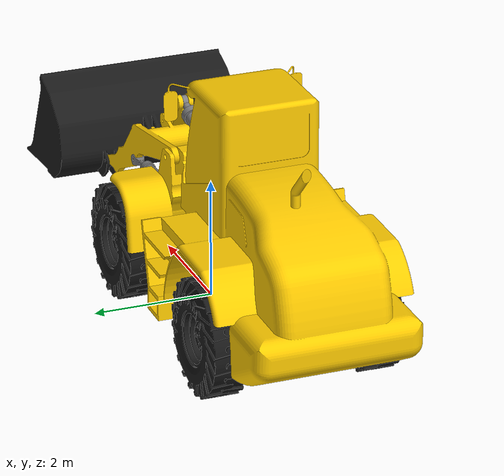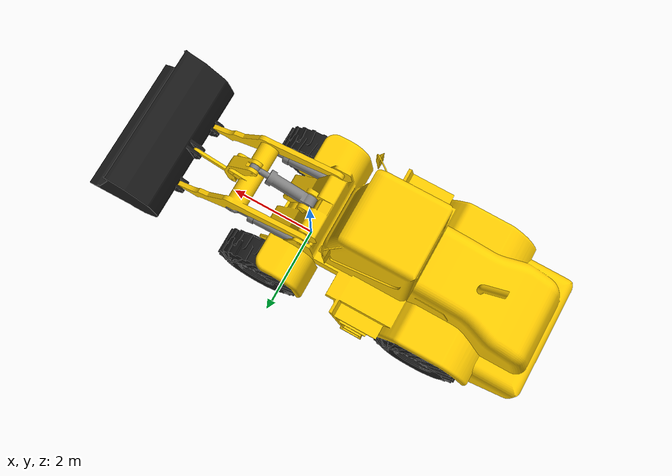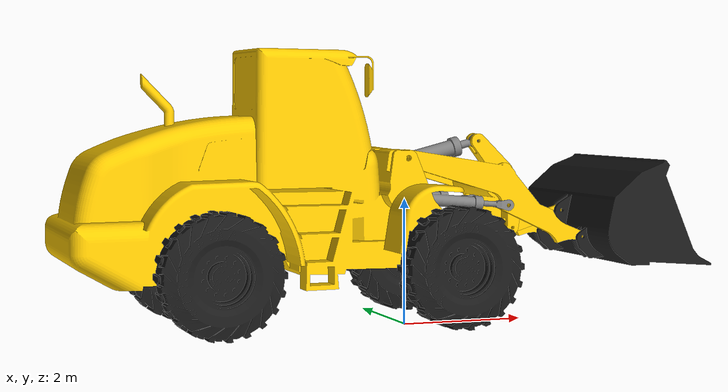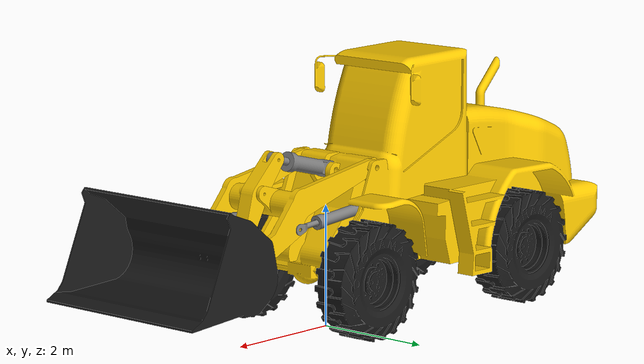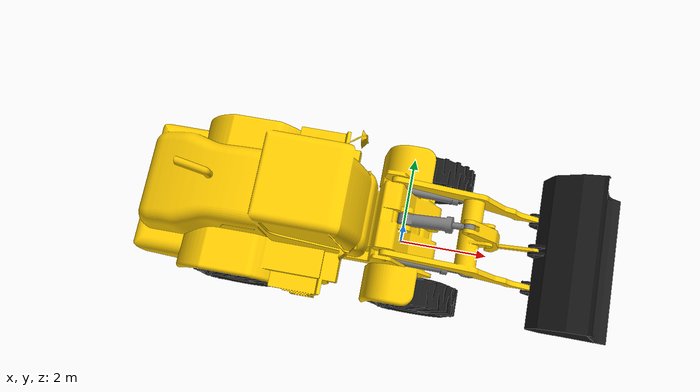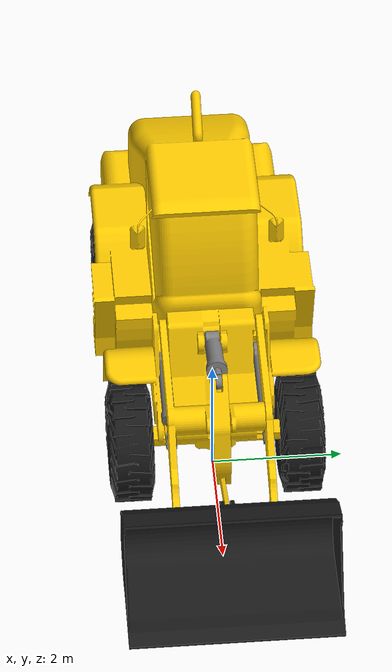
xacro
<?xml version="1.0"?>
<robot xmlns:xacro="http://www.ros.org/wiki/xacro" name="L580">

  <material name="yellow"><color rgba="1.0 0.8 0.0 1.0"/></material>
  <material name="grey"><color rgba="0.5 0.5 0.5 1.0"/></material>
  <material name="black"><color rgba="0.1 0.1 0.1 1.0"/></material>

  <link name="dummy_link"/>

  <joint name="dummy_to_base" type="fixed">
    <parent link="dummy_link"/>
    <child link="base_link"/>
    <origin xyz="0 0 2.6" rpy="0 0 0"/>
  </joint>

  <link name="base_link">
    <inertial>
      <mass value="5000.0"/>
      <origin xyz="-2.61002 0.0 -0.48814" rpy="0 0 0"/>
      <inertia ixx="5000.0" ixy="0.0" ixz="500.0" iyy="15000.0" iyz="0.0" izz="13000.0"/>
    </inertial>
    <visual><geometry><mesh filename="file:///$(find loader_sim_pkg)/meshes/body.STL"/></geometry><material name="yellow"/></visual>
    <collision><geometry><mesh filename="file:///$(find loader_sim_pkg)/meshes/body.STL"/></geometry></collision>
  </link>

  <joint name="front_wheel_joint" type="continuous">
    <parent link="base_link"/>
    <child link="front_wheel_link"/>
    <origin xyz="0.43775 0 -1.5816" rpy="-1.57 -1.57 0"/>
    <axis xyz="0 0 1"/>
  </joint>
  <link name="front_wheel_link">
    <inertial>
      <mass value="500.0"/>
      <origin xyz="0 0 0" rpy="0 0 0"/>
      <inertia ixx="100.0" ixy="0.0" ixz="0.0" iyy="100.0" iyz="0.0" izz="50.0"/>
    </inertial>
    <visual><geometry><mesh filename="file:///$(find loader_sim_pkg)/meshes/wheel.STL"/></geometry><material name="black"/></visual>
    <collision><geometry><mesh filename="file:///$(find loader_sim_pkg)/meshes/wheel.STL"/></geometry></collision>
  </link>

  <joint name="rear_wheel_joint" type="continuous">
    <parent link="base_link"/>
    <child link="rear_wheel_link"/>
    <origin xyz="-3.33631 0 -1.5816" rpy="-1.57 -1.57 0"/>
    <axis xyz="0 0 1"/>
  </joint>
  <link name="rear_wheel_link">
    <inertial>
      <mass value="500.0"/>
      <origin xyz="0 0 0" rpy="0 0 0"/>
      <inertia ixx="100.0" ixy="0.0" ixz="0.0" iyy="100.0" iyz="0.0" izz="50.0"/>
    </inertial>
    <visual><geometry><mesh filename="file:///$(find loader_sim_pkg)/meshes/wheel.STL"/></geometry><material name="black"/></visual>
    <collision><geometry><mesh filename="file:///$(find loader_sim_pkg)/meshes/wheel.STL"/></geometry></collision>
  </link>

  <joint name="arm_joint2" type="revolute">
    <parent link="base_link"/>
    <child link="arm_link1"/>
    <origin xyz="-0.25834 0 0.08169" rpy="-1.57 0.40815617 0"/>
    <axis xyz="0 0 1"/>
    <limit lower="-1.5" upper="1.5" effort="50000" velocity="0.5"/>
    <dynamics damping="500.0" friction="50.0"/>
  </joint>
  <link name="arm_link1">
    <inertial>
      <mass value="100.0"/>
      <origin xyz="1.28313 0.0 0.0" rpy="0 0 0"/>
      <inertia ixx="10.0" ixy="0.0" ixz="0" iyy="25.0" iyz="0.0" izz="28.0"/>
    </inertial>
    <visual><geometry><mesh filename="file:///$(find loader_sim_pkg)/meshes/arm_link1.STL"/></geometry><material name="yellow"/></visual>
    <collision><geometry><mesh filename="file:///$(find loader_sim_pkg)/meshes/arm_link1.STL"/></geometry></collision>
  </link>

  <joint name="arm_joint4" type="revolute">
    <parent link="arm_link1"/>
    <child link="bucket"/>
    <origin xyz="3.26512 0 0" rpy="0 0 -0.329692696"/>
    <axis xyz="0 0 1"/>
    <limit lower="-2.0" upper="2.0" effort="30000" velocity="0.5"/>
    <dynamics damping="200.0" friction="20.0"/>
  </joint>
  <link name="bucket">
    <inertial>
      <mass value="10.0"/>
      <origin xyz="0.81076 -0.35 0.0" rpy="0 0 0"/>
      <inertia ixx="5.0" ixy="0.0" ixz="0.0" iyy="5.0" iyz="0.0" izz="2.0"/>
    </inertial>
    <visual><geometry><mesh filename="file:///$(find loader_sim_pkg)/meshes/bucket.STL"/></geometry><material name="black"/></visual>
    <collision><geometry><mesh filename="file:///$(find loader_sim_pkg)/meshes/bucket.STL"/></geometry></collision>
  </link>

  <joint name="bellcrank_joint" type="revolute">
    <parent link="arm_link1"/>
    <child link="tilt_link1"/>
    <origin xyz="1.85125 -0.53443 0" rpy="0 0 0.436681379"/>
    <axis xyz="0 0 1"/>
    <limit lower="-3.0" upper="3.0" effort="20000" velocity="1.0"/>
    <dynamics damping="300.0" friction="30.0"/>
  </joint>
  <link name="tilt_link1">
    <inertial>
      <mass value="30.0"/>
      <origin xyz="0.10893 0.0 0.0" rpy="0 0 0"/>
      <inertia ixx="1.0" ixy="0.0" ixz="0.0" iyy="5.0" iyz="0.0" izz="5.5"/>
    </inertial>
    <visual><geometry><mesh filename="file:///$(find loader_sim_pkg)/meshes/tilt_link1_co2.STL"/></geometry><material name="yellow"/></visual>
    <collision><geometry><mesh filename="file:///$(find loader_sim_pkg)/meshes/tilt_link1_co2.STL"/></geometry></collision>
  </link>

  <joint name="tilt_joint3" type="revolute">
    <parent link="tilt_link1"/>
    <child link="tilt_link2"/>
    <origin xyz="0.82217 0.48340 0" rpy="0 0 -1.13446401"/>
    <axis xyz="0 0 1"/>
    <limit lower="-3.0" upper="3.0" effort="10000" velocity="1.0"/>
    <dynamics damping="100.0" friction="10.0"/>
  </joint>
  <link name="tilt_link2">
    <inertial>
      <mass value="5.0"/>
      <origin xyz="0.45346 0.0 0.0" rpy="0 0 0"/>
      <inertia ixx="0.05" ixy="0.0" ixz="0.0" iyy="1.0" iyz="0.0" izz="1.0"/>
    </inertial>
    <visual><geometry><mesh filename="file:///$(find loader_sim_pkg)/meshes/tilt_link2.STL"/></geometry><material name="yellow"/></visual>
    <collision><geometry><mesh filename="file:///$(find loader_sim_pkg)/meshes/tilt_link2.STL"/></geometry></collision>
  </link>

  <joint name="arm_joint1" type="revolute">
    <parent link="base_link"/>
    <child link="cil_link2"/>
    <origin xyz="-0.30062 0 -0.53381" rpy="-1.57 0.08666653 0"/>
    <axis xyz="0 0 1"/>
    <limit lower="-1.0" upper="1.0" effort="10000" velocity="1.0"/>
    <dynamics damping="50.0" friction="5.0"/>
  </joint>
  <link name="cil_link2">
    <inertial>
      <mass value="15.0"/>
      <origin xyz="0.42516 0 0" rpy="0 0 0"/>
      <inertia ixx="0.2" ixy="0.0" ixz="0.0" iyy="2.0" iyz="0.0" izz="2.0"/>
    </inertial>
    <visual><geometry><mesh filename="file:///$(find loader_sim_pkg)/meshes/cil2.STL"/></geometry><material name="grey"/></visual>
    <collision><geometry><mesh filename="file:///$(find loader_sim_pkg)/meshes/cil2.STL"/></geometry></collision>
  </link>

  <joint name="cil2_joint" type="prismatic">
    <parent link="cil_link2"/>
    <child link="cil_pris_link2"/>
    <origin xyz="0.42917 0 0" rpy="3.14 -1.57 0"/>
    <axis xyz="0 0 1"/>
    <limit lower="0.0" upper="1.0" effort="100000" velocity="0.2"/>
    <dynamics damping="1000.0" friction="100.0"/>
  </joint>
  <link name="cil_pris_link2">
    <inertial>
      <mass value="5.0"/>
      <origin xyz="0 0 0.49872" rpy="0 0 0"/>
      <inertia ixx="0.5" ixy="0.0" ixz="0.0" iyy="0.5" iyz="0.0" izz="0.05"/>
    </inertial>
    <visual><geometry><mesh filename="file:///$(find loader_sim_pkg)/meshes/cil2_pris.STL"/></geometry><material name="grey"/></visual>
    <collision><geometry><mesh filename="file:///$(find loader_sim_pkg)/meshes/cil2_pris.STL"/></geometry></collision>
  </link>

  <joint name="tilt_joint1" type="revolute">
    <parent link="base_link"/>
    <child link="cil_link1"/>
    <origin xyz="0 0 0" rpy="-1.57 -0.24965842 0"/>
    <axis xyz="0 0 1"/>
    <limit lower="-1.0" upper="1.0" effort="10000" velocity="1.0"/>
    <dynamics damping="50.0" friction="5.0"/>
  </joint>
  <link name="cil_link1">
    <inertial>
      <mass value="15.0"/>
      <origin xyz="0.42516 0 0" rpy="0 0 0"/>
      <inertia ixx="0.2" ixy="0.0" ixz="0.0" iyy="2.0" iyz="0.0" izz="2.0"/>
    </inertial>
    <visual><geometry><mesh filename="file:///$(find loader_sim_pkg)/meshes/cil1.STL"/></geometry><material name="grey"/></visual>
    <collision><geometry><mesh filename="file:///$(find loader_sim_pkg)/meshes/cil1.STL"/></geometry></collision>
  </link>

  <joint name="cil1_joint" type="prismatic">
    <parent link="cil_link1"/>
    <child link="cil_pris_link1"/>
    <origin xyz="0.37347 0 0" rpy="3.14 -1.57 0"/>
    <axis xyz="0 0 1"/>
    <limit lower="0.0" upper="0.7" effort="100000" velocity="0.2"/>
    <dynamics damping="1000.0" friction="100.0"/>
  </joint>
  <link name="cil_pris_link1">
    <inertial>
      <mass value="5.0"/>
      <origin xyz="0 0 0.49872" rpy="0 0 0"/>
      <inertia ixx="0.5" ixy="0.0" ixz="0.0" iyy="0.5" iyz="0.0" izz="0.05"/>
    </inertial>
    <visual><geometry><mesh filename="file:///$(find loader_sim_pkg)/meshes/cil1_pris.STL"/></geometry><material name="grey"/></visual>
    <collision><geometry><mesh filename="file:///$(find loader_sim_pkg)/meshes/cil1_pris.STL"/></geometry></collision>
  </link>

  <gazebo>
    <joint name="lift_loop_joint" type="revolute">
      <parent>cil_pris_link2</parent>
      <child>arm_link1</child>
      <pose>0 0 1.33635 3.14 -1.57 0</pose>
      <axis>
        <xyz>0 0 1</xyz>
        <limit>
          <lower>-6.28</lower>
          <upper>6.28</upper>
        </limit>
        <dynamics>
          <damping>100.0</damping>
          <friction>10.0</friction>
        </dynamics>
      </axis>
      <physics>
        <ode>
          <implicit_spring_damper>true</implicit_spring_damper>
          <cfm>0.001</cfm>
          <erp>0.2</erp>
        </ode>
      </physics>
    </joint>

    <joint name="tilt_piston_loop" type="revolute">
      <parent>cil_pris_link1</parent>
      <child>tilt_link1</child>
      <pose>0.89626 0 0 3.14 -1.57 0</pose>
      <axis>
        <xyz>0 0 1</xyz>
        <limit>
          <lower>-6.28</lower>
          <upper>6.28</upper>
        </limit>
        <dynamics>
          <damping>100.0</damping>
          <friction>10.0</friction>
        </dynamics>
      </axis>
      <physics>
        <ode>
          <implicit_spring_damper>true</implicit_spring_damper>
          <cfm>0.001</cfm>
          <erp>0.2</erp>
        </ode>
      </physics>
    </joint>

    <joint name="dogbone_bucket_loop" type="revolute">
      <parent>tilt_link2</parent>
      <child>bucket</child>
      <pose>0.92750 0 0 0 0 0.368089939</pose>
      <axis>
        <xyz>0 0 1</xyz>
        <limit>
          <lower>-6.28</lower>
          <upper>6.28</upper>
        </limit>
        <dynamics>
          <damping>50.0</damping>
          <friction>5.0</friction>
        </dynamics>
      </axis>
      <physics>
        <ode>
          <implicit_spring_damper>true</implicit_spring_damper>
          <cfm>0.001</cfm>
          <erp>0.2</erp>
        </ode>
      </physics>
    </joint>

    <physics type="ode">
      <max_step_size>0.001</max_step_size>
      <real_time_factor>1.0</real_time_factor>
      <real_time_update_rate>1000</real_time_update_rate>
      <ode>
        <solver>
          <type>quick</type>
          <iters>150</iters>
          <sor>1.3</sor>
        </solver>
        <constraints>
          <cfm>0.0</cfm>
          <erp>0.2</erp>
          <contact_max_correcting_vel>100.0</contact_max_correcting_vel>
          <contact_surface_layer>0.001</contact_surface_layer>
        </constraints>
      </ode>
    </physics>
  </gazebo>

  <ros2_control name="GazeboSystem" type="system">
    <hardware>
        <plugin>gazebo_ros2_control/GazeboSystem</plugin>
    </hardware>

    <joint name="front_wheel_joint">
        <command_interface name="velocity"/>
        <state_interface name="position">
            <param name="initial_value">0.0</param>
        </state_interface>
        <state_interface name="velocity"/>
    </joint>
    <joint name="rear_wheel_joint">
        <command_interface name="velocity"/>
        <state_interface name="position">
            <param name="initial_value">0.0</param>
        </state_interface>
        <state_interface name="velocity"/>
    </joint>

    <joint name="cil1_joint">
        <command_interface name="velocity"/>
        <state_interface name="position">
            <param name="initial_value">0.0</param>
        </state_interface>
        <state_interface name="velocity"/>
    </joint>
    <joint name="cil2_joint">
        <command_interface name="velocity"/>
        <state_interface name="position">
            <param name="initial_value">0.0</param>
        </state_interface>
        <state_interface name="velocity"/>
    </joint>
  </ros2_control>

  <gazebo>
    <plugin filename="libgazebo_ros2_control.so" name="gazebo_ros2_control">
        <parameters>$(find loader_sim_pkg)/config/controllers.yaml</parameters>
    </plugin>
  </gazebo>

  <gazebo reference="front_wheel_link">
      <surface>
        <friction>
          <ode>
            <slip1>0.0</slip1>
            <slip2>0.0</slip2>
            <mu>1.2</mu>
            <mu2>1.2</mu2>
          </ode>
        </friction>
      </surface>
      <material>Gazebo/Grey</material>
  </gazebo>

  <gazebo reference="rear_wheel_link">
      <surface>
        <friction>
          <ode>
            <slip1>0.0</slip1>
            <slip2>0.0</slip2>
            <mu>1.2</mu>
            <mu2>1.2</mu2>
          </ode>
        </friction>
      </surface>
      <material>Gazebo/Grey</material>
  </gazebo>

</robot>
